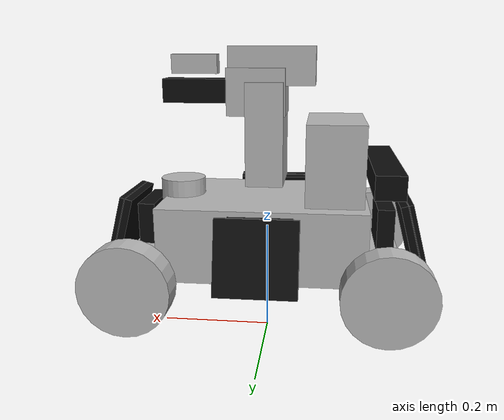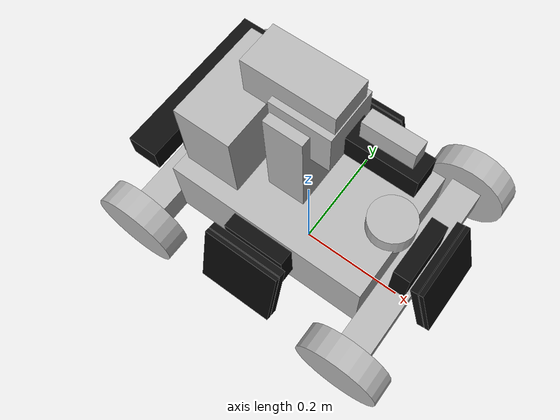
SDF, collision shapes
<?xml version="1.0" ?>
<!-- |    This document was autogenerated by xmacro4sdf from src/rmul24_gazebo_simulator/resource/xmacro/rmul24_sentry_robot.sdf.xmacro  | -->
<!-- |    EDITING THIS FILE BY HAND IS NOT RECOMMENDED                                                                                   | -->
<sdf version="1.7">
	<!--include defination-->
	<!--property defination-->
	<!--rmul24_sentry_robot model-->
	<model name="rmul24_sentry_robot">
		<pose>0 0 0.15 0 0 0</pose>
		<link name="base_footprint"/>
		<joint name="base_to_chassis" type="fixed">
			<pose>0 0 0.076 0 0 0</pose>
			<parent>base_footprint</parent>
			<child>chassis</child>
		</joint>
		<!--chassis-->
		<link name="chassis">
			<inertial>
				<pose>0 0 0.055 0 0 0</pose>
				<mass>15.0</mass>
				<inertia>
					<ixx>0.093125</ixx>
					<ixy>0</ixy>
					<ixz>0</ixz>
					<iyy>0.18312499999999998</iyy>
					<iyz>0</iyz>
					<izz>0.23399999999999999</izz>
				</inertia>
			</inertial>
			<visual name="chassis_visual">
				<geometry>
					<mesh>
						<uri>model://rmua19_standard_robot/meshes/chassis_base.dae</uri>
					</mesh>
				</geometry>
			</visual>
			<collision name="chassis_base_collision">
				<pose>0 0 0.045 0 0 0</pose>
				<geometry>
					<box>
						<size>0.36 0.24 0.13</size>
					</box>
				</geometry>
			</collision>
			<collision name="chassis_projectile_container_collision">
				<pose>-0.122 0 0.177 0 0 0</pose>
				<geometry>
					<box>
						<size>0.1 0.18 0.146</size>
					</box>
				</geometry>
			</collision>
			<collision name="chassis_fornt_wheel_holder_collision">
				<pose>0.208 0 0 0 0 0</pose>
				<geometry>
					<box>
						<size>0.055 0.367 0.055</size>
					</box>
				</geometry>
			</collision>
			<collision name="chassis_rear_wheel_holder_collision">
				<pose>-0.208 0 0 0 0 0</pose>
				<geometry>
					<box>
						<size>0.055 0.367 0.055</size>
					</box>
				</geometry>
			</collision>
			<sensor name="chassis_imu" type="imu">
				<always_on>1</always_on>
				<update_rate>200</update_rate>
			</sensor>
		</link>
		<!--front_left wheel link and joint-->
		<joint name="front_left_wheel_joint" type="revolute">
			<pose relative_to="chassis">0.207 0.194 0 0 0 0</pose>
			<parent>chassis</parent>
			<child>front_left_wheel</child>
			<axis>
				<xyz>0 1 0</xyz>
				<limit>
					<lower>-1.79769e+308</lower>
					<upper>1.79769e+308</upper>
					<effort>1e+10</effort>
					<velocity>1e+10</velocity>
				</limit>
			</axis>
		</joint>
		<link name="front_left_wheel">
			<pose relative_to="front_left_wheel_joint">0 0 0 0 0 0</pose>
			<inertial>
				<pose>0 0 0 1.5707 0 0</pose>
				<mass>0.4</mass>
				<inertia>
					<ixx>0.0006426653333333334</ixx>
					<ixy>0</ixy>
					<ixz>0</ixz>
					<iyy>0.0006426653333333334</iyy>
					<iyz>0</iyz>
					<izz>0.0011491280000000001</izz>
				</inertia>
			</inertial>
			<visual name="front_left_wheel_visual">
				<geometry>
					<mesh>
						<uri>model://rmua19_standard_robot/meshes/wheel_left.dae</uri>
					</mesh>
				</geometry>
			</visual>
			<collision name="front_left_wheel_collision">
				<pose>0 0 0 1.5707 0 0</pose>
				<geometry>
					<cylinder>
						<radius>0.0758</radius>
						<length>0.0452</length>
					</cylinder>
				</geometry>
				<surface>
					<friction>
						<ode>
							<mu>0.2</mu>
							<mu2>0.2</mu2>
						</ode>
					</friction>
				</surface>
			</collision>
		</link>
		<!--front_right wheel link and joint-->
		<joint name="front_right_wheel_joint" type="revolute">
			<pose relative_to="chassis">0.207 -0.194 0 0 0 0</pose>
			<parent>chassis</parent>
			<child>front_right_wheel</child>
			<axis>
				<xyz>0 1 0</xyz>
				<limit>
					<lower>-1.79769e+308</lower>
					<upper>1.79769e+308</upper>
					<effort>1e+10</effort>
					<velocity>1e+10</velocity>
				</limit>
			</axis>
		</joint>
		<link name="front_right_wheel">
			<pose relative_to="front_right_wheel_joint">0 0 0 0 0 0</pose>
			<inertial>
				<pose>0 0 0 1.5707 0 0</pose>
				<mass>0.4</mass>
				<inertia>
					<ixx>0.0006426653333333334</ixx>
					<ixy>0</ixy>
					<ixz>0</ixz>
					<iyy>0.0006426653333333334</iyy>
					<iyz>0</iyz>
					<izz>0.0011491280000000001</izz>
				</inertia>
			</inertial>
			<visual name="front_right_wheel_visual">
				<geometry>
					<mesh>
						<uri>model://rmua19_standard_robot/meshes/wheel_right.dae</uri>
					</mesh>
				</geometry>
			</visual>
			<collision name="front_right_wheel_collision">
				<pose>0 0 0 1.5707 0 0</pose>
				<geometry>
					<cylinder>
						<radius>0.0758</radius>
						<length>0.0452</length>
					</cylinder>
				</geometry>
				<surface>
					<friction>
						<ode>
							<mu>0.2</mu>
							<mu2>0.2</mu2>
						</ode>
					</friction>
				</surface>
			</collision>
		</link>
		<!--rear_left wheel link and joint-->
		<joint name="rear_left_wheel_joint" type="revolute">
			<pose relative_to="chassis">-0.207 0.194 0 0 0 0</pose>
			<parent>chassis</parent>
			<child>rear_left_wheel</child>
			<axis>
				<xyz>0 1 0</xyz>
				<limit>
					<lower>-1.79769e+308</lower>
					<upper>1.79769e+308</upper>
					<effort>1e+10</effort>
					<velocity>1e+10</velocity>
				</limit>
			</axis>
		</joint>
		<link name="rear_left_wheel">
			<pose relative_to="rear_left_wheel_joint">0 0 0 0 0 0</pose>
			<inertial>
				<pose>0 0 0 1.5707 0 0</pose>
				<mass>0.4</mass>
				<inertia>
					<ixx>0.0006426653333333334</ixx>
					<ixy>0</ixy>
					<ixz>0</ixz>
					<iyy>0.0006426653333333334</iyy>
					<iyz>0</iyz>
					<izz>0.0011491280000000001</izz>
				</inertia>
			</inertial>
			<visual name="rear_left_wheel_visual">
				<geometry>
					<mesh>
						<uri>model://rmua19_standard_robot/meshes/wheel_right.dae</uri>
					</mesh>
				</geometry>
			</visual>
			<collision name="rear_left_wheel_collision">
				<pose>0 0 0 1.5707 0 0</pose>
				<geometry>
					<cylinder>
						<radius>0.0758</radius>
						<length>0.0452</length>
					</cylinder>
				</geometry>
				<surface>
					<friction>
						<ode>
							<mu>0.2</mu>
							<mu2>0.2</mu2>
						</ode>
					</friction>
				</surface>
			</collision>
		</link>
		<!--rear_right wheel link and joint-->
		<joint name="rear_right_wheel_joint" type="revolute">
			<pose relative_to="chassis">-0.207 -0.194 0 0 0 0</pose>
			<parent>chassis</parent>
			<child>rear_right_wheel</child>
			<axis>
				<xyz>0 1 0</xyz>
				<limit>
					<lower>-1.79769e+308</lower>
					<upper>1.79769e+308</upper>
					<effort>1e+10</effort>
					<velocity>1e+10</velocity>
				</limit>
			</axis>
		</joint>
		<link name="rear_right_wheel">
			<pose relative_to="rear_right_wheel_joint">0 0 0 0 0 0</pose>
			<inertial>
				<pose>0 0 0 1.5707 0 0</pose>
				<mass>0.4</mass>
				<inertia>
					<ixx>0.0006426653333333334</ixx>
					<ixy>0</ixy>
					<ixz>0</ixz>
					<iyy>0.0006426653333333334</iyy>
					<iyz>0</iyz>
					<izz>0.0011491280000000001</izz>
				</inertia>
			</inertial>
			<visual name="rear_right_wheel_visual">
				<geometry>
					<mesh>
						<uri>model://rmua19_standard_robot/meshes/wheel_left.dae</uri>
					</mesh>
				</geometry>
			</visual>
			<collision name="rear_right_wheel_collision">
				<pose>0 0 0 1.5707 0 0</pose>
				<geometry>
					<cylinder>
						<radius>0.0758</radius>
						<length>0.0452</length>
					</cylinder>
				</geometry>
				<surface>
					<friction>
						<ode>
							<mu>0.2</mu>
							<mu2>0.2</mu2>
						</ode>
					</friction>
				</surface>
			</collision>
		</link>
		<!--gimbal yaw module-->
		<joint name="gimbal_yaw_joint" type="revolute">
			<pose relative_to="chassis">0 0 0.1376 0 0 0</pose>
			<parent>chassis</parent>
			<child>gimbal_yaw</child>
			<axis>
				<xyz>0 0 1</xyz>
				<limit>
					<effort>100</effort>
					<velocity>50</velocity>
					<lower>-1.79769e+308</lower>
					<upper>1.79769e+308</upper>
				</limit>
			</axis>
		</joint>
		<link name="gimbal_yaw">
			<pose relative_to="gimbal_yaw_joint">0 0 0 0 0 0</pose>
			<inertial>
				<pose>0 0 0.06 0 0 0</pose>
				<mass>1.0</mass>
				<inertia>
					<ixx>0.003033333333333334</ixx>
					<ixy>0</ixy>
					<ixz>0</ixz>
					<iyy>0.003033333333333334</iyy>
					<iyz>0</iyz>
					<izz>0.0012500000000000002</izz>
				</inertia>
			</inertial>
			<visual name="visual">
				<geometry>
					<mesh>
						<uri>model://rmua19_standard_robot/meshes/gimbal_yaw.dae</uri>
					</mesh>
				</geometry>
			</visual>
			<collision name="collision">
				<pose>0 0 0.0885 0 0 0</pose>
				<geometry>
					<box>
						<size>0.065 0.117 0.177</size>
					</box>
				</geometry>
			</collision>
		</link>
		<!--gimbal pitch module-->
		<joint name="gimbal_pitch_joint" type="revolute">
			<pose relative_to="gimbal_yaw">0 0.004 0.16 0 0 0</pose>
			<parent>gimbal_yaw</parent>
			<child>gimbal_pitch</child>
			<axis>
				<xyz>0 1 0</xyz>
				<limit>
					<effort>100</effort>
					<lower>-0.785</lower>
					<upper>0.5652</upper>
					<velocity>50</velocity>
				</limit>
			</axis>
		</joint>
		<link name="gimbal_pitch">
			<pose relative_to="gimbal_pitch_joint">0 0 0 0 0 0</pose>
			<inertial>
				<pose>0.02 0 0 0 0 0</pose>
				<mass>0.5</mass>
				<inertia>
					<ixx>0.0007541666666666668</ixx>
					<ixy>0</ixy>
					<ixz>0</ixz>
					<iyy>0.0030208333333333337</iyy>
					<iyz>0</iyz>
					<izz>0.0029416666666666666</izz>
				</inertia>
			</inertial>
			<visual name="visual">
				<geometry>
					<mesh>
						<uri>model://rmua19_standard_robot/meshes/gimbal_pitch.dae</uri>
					</mesh>
				</geometry>
			</visual>
			<collision name="collision_main">
				<pose>0.015 0 0 0 0 0</pose>
				<geometry>
					<box>
						<size>0.1 0.0915 0.08</size>
					</box>
				</geometry>
			</collision>
			<collision name="collision_box">
				<pose>-0.011 0 0.043 0 0 0</pose>
				<geometry>
					<box>
						<size>0.14801 0.07 0.065</size>
					</box>
				</geometry>
			</collision>
			<sensor name="gimbal_imu" type="imu">
				<always_on>1</always_on>
				<update_rate>200</update_rate>
			</sensor>
		</link>
		<!--for referee system -->
		<!--front armors -->
		<joint name="armor_support_frame_0_joint" type="fixed">
			<pose relative_to="chassis">0.197 0 0.061 0 0 0</pose>
			<parent>chassis</parent>
			<child>armor_support_frame_0</child>
		</joint>
		<link name="armor_support_frame_0">
			<pose relative_to="armor_support_frame_0_joint">0 0 0 0 0 0</pose>
			<inertial>
				<pose>0.035 0 0 0 0 0</pose>
				<mass>0.1</mass>
				<inertia>
					<ixx>0.00023080833333333334</ixx>
					<ixy>0</ixy>
					<ixz>0</ixz>
					<iyy>0.00017014166666666668</iyy>
					<iyz>0</iyz>
					<izz>0.00014468333333333334</izz>
				</inertia>
			</inertial>
			<visual name="visual">
				<geometry>
					<mesh>
						<uri>model://rm21_armor_module/meshes/armor_support_frame.stl</uri>
					</mesh>
				</geometry>
				<material>
					<ambient>0.1 0.1 0.1</ambient>
					<diffuse>0.05 0.05 0.05</diffuse>
					<specular>0.6 0.6 0.6</specular>
				</material>
			</visual>
			<collision name="collision">
				<pose>0.015 0 0 0 0 0</pose>
				<geometry>
					<box>
						<size>0.03 0.11 0.08</size>
					</box>
				</geometry>
			</collision>
		</link>
		<joint name="armor_0_joint" type="fixed">
			<pose relative_to="armor_support_frame_0">0.075 0 -0.071 0 -0.262 0</pose>
			<parent>armor_support_frame_0</parent>
			<child>armor_0</child>
		</joint>
		<link name="armor_0">
			<pose relative_to="armor_0_joint">0 0 0 0 0 0</pose>
			<inertial>
				<pose>0 0 0.0625 0 0 0</pose>
				<mass>0.1</mass>
				<inertia>
					<ixx>0.0003065083333333333</ixx>
					<ixy>0</ixy>
					<ixz>0</ixz>
					<iyy>0.0001421774166666667</iyy>
					<iyz>0</iyz>
					<izz>0.0001670190833333333</izz>
				</inertia>
			</inertial>
			<visual name="visual">
				<geometry>
					<mesh>
						<uri>model://rm21_armor_module/meshes/small_armor.dae</uri>
					</mesh>
				</geometry>
				<material>
					<ambient>0.1 0.1 0.1</ambient>
					<diffuse>0.05 0.05 0.05</diffuse>
					<specular>0.6 0.6 0.6</specular>
				</material>
			</visual>
			<visual name="target_visual">
				<geometry>
					<mesh>
						<uri>model://rm21_armor_module/meshes/small_armor_target.dae</uri>
					</mesh>
				</geometry>
				<material>
					<ambient>0.1 0.1 0.1</ambient>
					<diffuse>0.05 0.05 0.05</diffuse>
					<specular>0.6 0.6 0.6</specular>
				</material>
			</visual>
			<visual name="light_bar_visual">
				<geometry>
					<mesh>
						<uri>model://rm21_armor_module/meshes/small_armor_light_bar.dae</uri>
					</mesh>
				</geometry>
				<material>
					<ambient>1.0 1.0 1.0</ambient>
					<diffuse>1.0 1.0 1.0</diffuse>
					<emissive>1.0 1.0 1.0</emissive>
					<specular>0.5 0.5 0.5</specular>
				</material>
			</visual>
			<visual name="sticker_visual">
				<pose>0.014 0 0.0625 1.5708 0 1.5708</pose>
				<geometry>
					<plane>
						<normal>0 0 1</normal>
						<size>0.130 0.120</size>
					</plane>
				</geometry>
				<material>
					<ambient>1.0 1.0 1.0</ambient>
					<diffuse>1.0 1.0 1.0</diffuse>
					<specular>0.1 0.1 0.1</specular>
					<pbr>
						<metal>
							<albedo_map>model://rm21_armor_module/materials/textures/small_num3.png</albedo_map>
						</metal>
					</pbr>
				</material>
			</visual>
			<collision name="collision">
				<pose>0 0 0.0625 0 0 0</pose>
				<geometry>
					<box>
						<size>0.013 0.135 0.125</size>
					</box>
				</geometry>
			</collision>
			<collision name="target_collision">
				<pose>0.012 0 0.0625 0 0 0</pose>
				<geometry>
					<box>
						<size>0.008 0.135 0.125</size>
					</box>
				</geometry>
			</collision>
		</link>
		<!--left armors -->
		<joint name="armor_support_frame_1_joint" type="fixed">
			<pose relative_to="chassis">0 0.116 0.061 0 0 1.5708</pose>
			<parent>chassis</parent>
			<child>armor_support_frame_1</child>
		</joint>
		<link name="armor_support_frame_1">
			<pose relative_to="armor_support_frame_1_joint">0 0 0 0 0 0</pose>
			<inertial>
				<pose>0.035 0 0 0 0 0</pose>
				<mass>0.1</mass>
				<inertia>
					<ixx>0.00023080833333333334</ixx>
					<ixy>0</ixy>
					<ixz>0</ixz>
					<iyy>0.00017014166666666668</iyy>
					<iyz>0</iyz>
					<izz>0.00014468333333333334</izz>
				</inertia>
			</inertial>
			<visual name="visual">
				<geometry>
					<mesh>
						<uri>model://rm21_armor_module/meshes/armor_support_frame.stl</uri>
					</mesh>
				</geometry>
				<material>
					<ambient>0.1 0.1 0.1</ambient>
					<diffuse>0.05 0.05 0.05</diffuse>
					<specular>0.6 0.6 0.6</specular>
				</material>
			</visual>
			<collision name="collision">
				<pose>0.015 0 0 0 0 0</pose>
				<geometry>
					<box>
						<size>0.03 0.11 0.08</size>
					</box>
				</geometry>
			</collision>
		</link>
		<joint name="armor_1_joint" type="fixed">
			<pose relative_to="armor_support_frame_1">0.075 0 -0.071 0 -0.262 0</pose>
			<parent>armor_support_frame_1</parent>
			<child>armor_1</child>
		</joint>
		<link name="armor_1">
			<pose relative_to="armor_1_joint">0 0 0 0 0 0</pose>
			<inertial>
				<pose>0 0 0.0625 0 0 0</pose>
				<mass>0.1</mass>
				<inertia>
					<ixx>0.0003065083333333333</ixx>
					<ixy>0</ixy>
					<ixz>0</ixz>
					<iyy>0.0001421774166666667</iyy>
					<iyz>0</iyz>
					<izz>0.0001670190833333333</izz>
				</inertia>
			</inertial>
			<visual name="visual">
				<geometry>
					<mesh>
						<uri>model://rm21_armor_module/meshes/small_armor.dae</uri>
					</mesh>
				</geometry>
				<material>
					<ambient>0.1 0.1 0.1</ambient>
					<diffuse>0.05 0.05 0.05</diffuse>
					<specular>0.6 0.6 0.6</specular>
				</material>
			</visual>
			<visual name="target_visual">
				<geometry>
					<mesh>
						<uri>model://rm21_armor_module/meshes/small_armor_target.dae</uri>
					</mesh>
				</geometry>
				<material>
					<ambient>0.1 0.1 0.1</ambient>
					<diffuse>0.05 0.05 0.05</diffuse>
					<specular>0.6 0.6 0.6</specular>
				</material>
			</visual>
			<visual name="light_bar_visual">
				<geometry>
					<mesh>
						<uri>model://rm21_armor_module/meshes/small_armor_light_bar.dae</uri>
					</mesh>
				</geometry>
				<material>
					<ambient>1.0 1.0 1.0</ambient>
					<diffuse>1.0 1.0 1.0</diffuse>
					<emissive>1.0 1.0 1.0</emissive>
					<specular>0.5 0.5 0.5</specular>
				</material>
			</visual>
			<visual name="sticker_visual">
				<pose>0.014 0 0.0625 1.5708 0 1.5708</pose>
				<geometry>
					<plane>
						<normal>0 0 1</normal>
						<size>0.130 0.120</size>
					</plane>
				</geometry>
				<material>
					<ambient>1.0 1.0 1.0</ambient>
					<diffuse>1.0 1.0 1.0</diffuse>
					<specular>0.1 0.1 0.1</specular>
					<pbr>
						<metal>
							<albedo_map>model://rm21_armor_module/materials/textures/small_num3.png</albedo_map>
						</metal>
					</pbr>
				</material>
			</visual>
			<collision name="collision">
				<pose>0 0 0.0625 0 0 0</pose>
				<geometry>
					<box>
						<size>0.013 0.135 0.125</size>
					</box>
				</geometry>
			</collision>
			<collision name="target_collision">
				<pose>0.012 0 0.0625 0 0 0</pose>
				<geometry>
					<box>
						<size>0.008 0.135 0.125</size>
					</box>
				</geometry>
			</collision>
		</link>
		<!--rear armors -->
		<joint name="armor_support_frame_2_joint" type="fixed">
			<pose relative_to="chassis">-0.197 0 0.061 0 0 3.14</pose>
			<parent>chassis</parent>
			<child>armor_support_frame_2</child>
		</joint>
		<link name="armor_support_frame_2">
			<pose relative_to="armor_support_frame_2_joint">0 0 0 0 0 0</pose>
			<inertial>
				<pose>0.035 0 0 0 0 0</pose>
				<mass>0.1</mass>
				<inertia>
					<ixx>0.00023080833333333334</ixx>
					<ixy>0</ixy>
					<ixz>0</ixz>
					<iyy>0.00017014166666666668</iyy>
					<iyz>0</iyz>
					<izz>0.00014468333333333334</izz>
				</inertia>
			</inertial>
			<visual name="visual">
				<geometry>
					<mesh>
						<uri>model://rm21_armor_module/meshes/armor_support_frame.stl</uri>
					</mesh>
				</geometry>
				<material>
					<ambient>0.1 0.1 0.1</ambient>
					<diffuse>0.05 0.05 0.05</diffuse>
					<specular>0.6 0.6 0.6</specular>
				</material>
			</visual>
			<collision name="collision">
				<pose>0.015 0 0 0 0 0</pose>
				<geometry>
					<box>
						<size>0.03 0.11 0.08</size>
					</box>
				</geometry>
			</collision>
		</link>
		<joint name="armor_2_joint" type="fixed">
			<pose relative_to="armor_support_frame_2">0.075 0 -0.071 0 -0.262 0</pose>
			<parent>armor_support_frame_2</parent>
			<child>armor_2</child>
		</joint>
		<link name="armor_2">
			<pose relative_to="armor_2_joint">0 0 0 0 0 0</pose>
			<inertial>
				<pose>0 0 0.0625 0 0 0</pose>
				<mass>0.1</mass>
				<inertia>
					<ixx>0.0003065083333333333</ixx>
					<ixy>0</ixy>
					<ixz>0</ixz>
					<iyy>0.0001421774166666667</iyy>
					<iyz>0</iyz>
					<izz>0.0001670190833333333</izz>
				</inertia>
			</inertial>
			<visual name="visual">
				<geometry>
					<mesh>
						<uri>model://rm21_armor_module/meshes/small_armor.dae</uri>
					</mesh>
				</geometry>
				<material>
					<ambient>0.1 0.1 0.1</ambient>
					<diffuse>0.05 0.05 0.05</diffuse>
					<specular>0.6 0.6 0.6</specular>
				</material>
			</visual>
			<visual name="target_visual">
				<geometry>
					<mesh>
						<uri>model://rm21_armor_module/meshes/small_armor_target.dae</uri>
					</mesh>
				</geometry>
				<material>
					<ambient>0.1 0.1 0.1</ambient>
					<diffuse>0.05 0.05 0.05</diffuse>
					<specular>0.6 0.6 0.6</specular>
				</material>
			</visual>
			<visual name="light_bar_visual">
				<geometry>
					<mesh>
						<uri>model://rm21_armor_module/meshes/small_armor_light_bar.dae</uri>
					</mesh>
				</geometry>
				<material>
					<ambient>1.0 1.0 1.0</ambient>
					<diffuse>1.0 1.0 1.0</diffuse>
					<emissive>1.0 1.0 1.0</emissive>
					<specular>0.5 0.5 0.5</specular>
				</material>
			</visual>
			<visual name="sticker_visual">
				<pose>0.014 0 0.0625 1.5708 0 1.5708</pose>
				<geometry>
					<plane>
						<normal>0 0 1</normal>
						<size>0.130 0.120</size>
					</plane>
				</geometry>
				<material>
					<ambient>1.0 1.0 1.0</ambient>
					<diffuse>1.0 1.0 1.0</diffuse>
					<specular>0.1 0.1 0.1</specular>
					<pbr>
						<metal>
							<albedo_map>model://rm21_armor_module/materials/textures/small_num3.png</albedo_map>
						</metal>
					</pbr>
				</material>
			</visual>
			<collision name="collision">
				<pose>0 0 0.0625 0 0 0</pose>
				<geometry>
					<box>
						<size>0.013 0.135 0.125</size>
					</box>
				</geometry>
			</collision>
			<collision name="target_collision">
				<pose>0.012 0 0.0625 0 0 0</pose>
				<geometry>
					<box>
						<size>0.008 0.135 0.125</size>
					</box>
				</geometry>
			</collision>
		</link>
		<!--right armors -->
		<joint name="armor_support_frame_3_joint" type="fixed">
			<pose relative_to="chassis">0 -0.116 0.061 0 0 -1.5708</pose>
			<parent>chassis</parent>
			<child>armor_support_frame_3</child>
		</joint>
		<link name="armor_support_frame_3">
			<pose relative_to="armor_support_frame_3_joint">0 0 0 0 0 0</pose>
			<inertial>
				<pose>0.035 0 0 0 0 0</pose>
				<mass>0.1</mass>
				<inertia>
					<ixx>0.00023080833333333334</ixx>
					<ixy>0</ixy>
					<ixz>0</ixz>
					<iyy>0.00017014166666666668</iyy>
					<iyz>0</iyz>
					<izz>0.00014468333333333334</izz>
				</inertia>
			</inertial>
			<visual name="visual">
				<geometry>
					<mesh>
						<uri>model://rm21_armor_module/meshes/armor_support_frame.stl</uri>
					</mesh>
				</geometry>
				<material>
					<ambient>0.1 0.1 0.1</ambient>
					<diffuse>0.05 0.05 0.05</diffuse>
					<specular>0.6 0.6 0.6</specular>
				</material>
			</visual>
			<collision name="collision">
				<pose>0.015 0 0 0 0 0</pose>
				<geometry>
					<box>
						<size>0.03 0.11 0.08</size>
					</box>
				</geometry>
			</collision>
		</link>
		<joint name="armor_3_joint" type="fixed">
			<pose relative_to="armor_support_frame_3">0.075 0 -0.071 0 -0.262 0</pose>
			<parent>armor_support_frame_3</parent>
			<child>armor_3</child>
		</joint>
		<link name="armor_3">
			<pose relative_to="armor_3_joint">0 0 0 0 0 0</pose>
			<inertial>
				<pose>0 0 0.0625 0 0 0</pose>
				<mass>0.1</mass>
				<inertia>
					<ixx>0.0003065083333333333</ixx>
					<ixy>0</ixy>
					<ixz>0</ixz>
					<iyy>0.0001421774166666667</iyy>
					<iyz>0</iyz>
					<izz>0.0001670190833333333</izz>
				</inertia>
			</inertial>
			<visual name="visual">
				<geometry>
					<mesh>
						<uri>model://rm21_armor_module/meshes/small_armor.dae</uri>
					</mesh>
				</geometry>
				<material>
					<ambient>0.1 0.1 0.1</ambient>
					<diffuse>0.05 0.05 0.05</diffuse>
					<specular>0.6 0.6 0.6</specular>
				</material>
			</visual>
			<visual name="target_visual">
				<geometry>
					<mesh>
						<uri>model://rm21_armor_module/meshes/small_armor_target.dae</uri>
					</mesh>
				</geometry>
				<material>
					<ambient>0.1 0.1 0.1</ambient>
					<diffuse>0.05 0.05 0.05</diffuse>
					<specular>0.6 0.6 0.6</specular>
				</material>
			</visual>
			<visual name="light_bar_visual">
				<geometry>
					<mesh>
						<uri>model://rm21_armor_module/meshes/small_armor_light_bar.dae</uri>
					</mesh>
				</geometry>
				<material>
					<ambient>1.0 1.0 1.0</ambient>
					<diffuse>1.0 1.0 1.0</diffuse>
					<emissive>1.0 1.0 1.0</emissive>
					<specular>0.5 0.5 0.5</specular>
				</material>
			</visual>
			<visual name="sticker_visual">
				<pose>0.014 0 0.0625 1.5708 0 1.5708</pose>
				<geometry>
					<plane>
						<normal>0 0 1</normal>
						<size>0.130 0.120</size>
					</plane>
				</geometry>
				<material>
					<ambient>1.0 1.0 1.0</ambient>
					<diffuse>1.0 1.0 1.0</diffuse>
					<specular>0.1 0.1 0.1</specular>
					<pbr>
						<metal>
							<albedo_map>model://rm21_armor_module/materials/textures/small_num3.png</albedo_map>
						</metal>
					</pbr>
				</material>
			</visual>
			<collision name="collision">
				<pose>0 0 0.0625 0 0 0</pose>
				<geometry>
					<box>
						<size>0.013 0.135 0.125</size>
					</box>
				</geometry>
			</collision>
			<collision name="target_collision">
				<pose>0.012 0 0.0625 0 0 0</pose>
				<geometry>
					<box>
						<size>0.008 0.135 0.125</size>
					</box>
				</geometry>
			</collision>
		</link>
		<!--light_indicator-->
		<joint name="light_indicator_joint" type="fixed">
			<pose relative_to="chassis">-0.207 0 0.1 0 0 0</pose>
			<parent>chassis</parent>
			<child>light_indicator</child>
		</joint>
		<link name="light_indicator">
			<pose relative_to="light_indicator_joint">0 0 0 0 0 0</pose>
			<inertial>
				<pose>0 0 0.04 0 0 0</pose>
				<mass>0.1</mass>
				<inertia>
					<ixx>0.0006666666666666669</ixx>
					<ixy>0</ixy>
					<ixz>0</ixz>
					<iyy>3.416666666666667e-05</iyy>
					<iyz>0</iyz>
					<izz>0.0006741666666666668</izz>
				</inertia>
			</inertial>
			<visual name="light_indicator_holder_visual">
				<geometry>
					<mesh>
						<uri>model://rm21_light_indicator_module/meshes/light_indicator_holder.dae</uri>
					</mesh>
				</geometry>
				<material>
					<ambient>0.1 0.1 0.1</ambient>
					<diffuse>0.05 0.05 0.05</diffuse>
					<specular>0.6 0.6 0.6</specular>
				</material>
			</visual>
			<visual name="light_bar_visual">
				<geometry>
					<mesh>
						<uri>model://rm21_light_indicator_module/meshes/light_indicator_bar.dae</uri>
					</mesh>
				</geometry>
				<material>
					<ambient>1.0 1.0 1.0</ambient>
					<diffuse>1.0 1.0 1.0</diffuse>
					<specular>0.5 0.5 0.5</specular>
				</material>
			</visual>
			<collision name="light_bar_collision">
				<pose>0 0 0.06 0 0 0</pose>
				<geometry>
					<box>
						<size>0.05 0.28 0.04</size>
					</box>
				</geometry>
			</collision>
		</link>
		<!--speed_monitor_17mm-->
		<joint name="speed_monitor_joint" type="fixed">
			<pose relative_to="gimbal_pitch">0.07 0 0 0 0 0</pose>
			<parent>gimbal_pitch</parent>
			<child>speed_monitor</child>
		</joint>
		<link name="speed_monitor">
			<pose relative_to="speed_monitor_joint">0 0 0 0 0 0</pose>
			<inertial>
				<pose>0.055 0 0 0 0 0</pose>
				<mass>0.1</mass>
				<inertia>
					<ixx>2.941666666666667e-05</ixx>
					<ixy>0</ixy>
					<ixz>0</ixz>
					<iyy>0.00011484166666666668</iyy>
					<iyz>0</iyz>
					<izz>0.00011624166666666668</izz>
				</inertia>
			</inertial>
			<visual name="visual">
				<geometry>
					<mesh>
						<uri>model://rm21_speed_monitor_module/meshes/speed_monitor_17mm.dae</uri>
					</mesh>
				</geometry>
				<material>
					<ambient>0.1 0.1 0.1</ambient>
					<diffuse>0.05 0.05 0.05</diffuse>
					<specular>0.6 0.6 0.6</specular>
				</material>
			</visual>
			<visual name="light_bar_visual">
				<geometry>
					<mesh>
						<uri>model://rm21_speed_monitor_module/meshes/speed_monitor_17mm_light_bar.dae</uri>
					</mesh>
				</geometry>
				<material>
					<ambient>1.0 1.0 1.0</ambient>
					<diffuse>1.0 1.0 1.0</diffuse>
					<specular>0.5 0.5 0.5</specular>
				</material>
			</visual>
			<collision name="collision">
				<pose>0.055 0 0 0 0 0</pose>
				<geometry>
					<box>
						<size>0.11 0.043 0.041</size>
					</box>
				</geometry>
			</collision>
		</link>
		<!--rplidar a2-->
		<joint name="front_rplidar_a2_joint" type="fixed">
			<pose relative_to="chassis">0.155 0 0.1 0 0 0</pose>
			<parent>chassis</parent>
			<child>front_rplidar_a2</child>
		</joint>
		<link name="front_rplidar_a2">
			<pose relative_to="front_rplidar_a2_joint">0 0 0 0 0 0</pose>
			<inertial>
				<pose>0 0 0.02 0 0 0</pose>
				<mass>0.005</mass>
				<inertia>
					<ixx>2.6666666666666664e-06</ixx>
					<ixy>0</ixy>
					<ixz>0</ixz>
					<iyy>2.6666666666666664e-06</iyy>
					<iyz>0</iyz>
					<izz>4.000000000000001e-06</izz>
				</inertia>
			</inertial>
			<visual name="visual">
				<geometry>
					<mesh>
						<uri>model://rplidar_a2/meshes/rplidar_a2.dae</uri>
					</mesh>
				</geometry>
			</visual>
			<collision name="collision">
				<pose>0 0 0.02 0 0 0</pose>
				<geometry>
					<cylinder>
						<radius>0.04</radius>
						<length>0.04</length>
					</cylinder>
				</geometry>
			</collision>
			<sensor name="front_rplidar_a2" type="gpu_lidar">
				<ignition_frame_id>front_rplidar_a2</ignition_frame_id>
				<pose>0 0 0.03 0 0 0</pose>
				<always_on>true</always_on>
				<visualize>true</visualize>
				<update_rate>10.0</update_rate>
				<ray>
					<scan>
						<horizontal>
							<samples>400.0</samples>
							<resolution>1.0</resolution>
							<min_angle>0</min_angle>
							<max_angle>6.28000020980835</max_angle>
						</horizontal>
					</scan>
					<range>
						<min>0.15</min>
						<max>12.0</max>
					</range>
				</ray>
				<noise>
					<type>gaussian</type>
					<mean>0.0</mean>
					<stddev>0.01</stddev>
				</noise>
			</sensor>
		</link>
		<!--livox-->
		<joint name="front_livox_joint" type="fixed">
			<pose relative_to="chassis">0.16 0.0 0.18 0.5235987755982988 0.0 1.5707963267948966</pose>
			<parent>chassis</parent>
			<child>front_mid360</child>
		</joint>
		<link name="front_mid360">
			<pose relative_to="front_livox_joint">0.0 0.0 0.0 0 0 0</pose>
			<inertial>
				<pose>0 0 0.02 0 0 0</pose>
				<mass>0.005</mass>
				<inertia>
					<ixx>2.6666666666666664e-06</ixx>
					<ixy>0</ixy>
					<ixz>0</ixz>
					<iyy>2.6666666666666664e-06</iyy>
					<iyz>0</iyz>
					<izz>4.000000000000001e-06</izz>
				</inertia>
			</inertial>
			<visual name="visual">
				<pose>0.0 0.0 0.0 0 0 3.141592653589793</pose>
				<geometry>
					<mesh>
						<uri>model://mid360/meshes/mid360.dae</uri>
					</mesh>
				</geometry>
			</visual>
			<sensor name="front_mid360_imu" type="imu">
				<always_on>1</always_on>
				<update_rate>200</update_rate>
				<visualize>true</visualize>
			</sensor>
			<sensor name="front_mid360_lidar" type="gpu_lidar">
				<ignition_frame_id>front_mid360</ignition_frame_id>
				<pose>0 0 0.03 0 0 0</pose>
				<always_on>true</always_on>
				<visualize>true</visualize>
				<update_rate>20.0</update_rate>
				<ray>
					<scan>
						<horizontal>
							<samples>1875.0</samples>
							<resolution>1.0</resolution>
							<min_angle>0</min_angle>
							<max_angle>6.2831852</max_angle>
						</horizontal>
						<vertical>
							<samples>32</samples>
							<min_angle>-0.12217304764</min_angle>
							<max_angle>0.90757121104</max_angle>
						</vertical>
					</scan>
					<range>
						<min>0.15</min>
						<max>15.0</max>
					</range>
				</ray>
				<noise>
					<type>gaussian</type>
					<mean>0.0</mean>
					<stddev>0.01</stddev>
				</noise>
			</sensor>
		</link>
		<!--industrial camera-->
		<joint name="front_industrial_camera_joint" type="fixed">
			<pose relative_to="gimbal_pitch">0.1 0 0.045 0 0 0</pose>
			<parent>gimbal_pitch</parent>
			<child>front_industrial_camera</child>
		</joint>
		<link name="front_industrial_camera">
			<pose relative_to="front_industrial_camera_joint">0 0 0 0 0 0</pose>
			<inertial>
				<pose>0.025 0 0 0 0 0</pose>
				<mass>0.05</mass>
				<inertia>
					<ixx>7.141666666666669e-06</ixx>
					<ixy>0</ixy>
					<ixz>0</ixz>
					<iyy>3.1204166666666675e-05</iyy>
					<iyz>0</iyz>
					<izz>2.9270833333333334e-05</izz>
				</inertia>
			</inertial>
			<visual name="visual">
				<geometry>
					<mesh>
						<uri>model://industrial_camera/meshes/industrial_camera.dae</uri>
					</mesh>
				</geometry>
			</visual>
			<collision name="collision">
				<pose>0.025 0 0 0 0 0</pose>
				<geometry>
					<box>
						<size>0.08 0.025 0.033</size>
					</box>
				</geometry>
			</collision>
			<sensor name="front_industrial_camera" type="camera">
				<always_on>1</always_on>
				<update_rate>30.0</update_rate>
				<camera>
					<horizontal_fov>1.0</horizontal_fov>
					<image>
						<width>1920.0</width>
						<height>1080.0</height>
					</image>
					<clip>
						<near>0.1</near>
						<far>100</far>
					</clip>
				</camera>
			</sensor>
		</link>
		<!--plugins-->
		<!-- https://github.com/gazebosim/gz-sim/blob/ign-gazebo6/src/systems -->
		<!--plugin for joint state sensor-->
		<plugin filename="ignition-gazebo-joint-state-publisher-system" name="ignition::gazebo::systems::JointStatePublisher">
        </plugin>
		<!--plugin for light bar-->
		<plugin filename="LightBarController" name="ignition::gazebo::systems::LightBarController">
			<controller_name>color</controller_name>
			<link_visual>armor_0/light_bar_visual</link_visual>
			<link_visual>armor_1/light_bar_visual</link_visual>
			<link_visual>armor_2/light_bar_visual</link_visual>
			<link_visual>armor_3/light_bar_visual</link_visual>
			<link_visual>light_indicator/light_bar_visual</link_visual>
			<link_visual>speed_monitor/light_bar_visual</link_visual>
			<initial_color>none</initial_color>
		</plugin>
		<!--plugin for chassis control-->
		<plugin filename="MecanumDrive2" name="ignition::gazebo::systems::MecanumDrive2">
			<chassis_link>chassis</chassis_link>
			<front_left_joint>front_left_wheel_joint</front_left_joint>
			<front_right_joint>front_right_wheel_joint</front_right_joint>
			<rear_left_joint>rear_left_wheel_joint</rear_left_joint>
			<rear_right_joint>rear_right_wheel_joint</rear_right_joint>
		</plugin>
		<!--plugin for gimbal control-->
		<plugin filename="ignition-gazebo-joint-controller-system" name="ignition::gazebo::systems::JointController">
			<joint_name>gimbal_yaw_joint</joint_name>
			<use_force_commands>false</use_force_commands>
			<p_gain>0.2</p_gain>
			<i_gain>0.01</i_gain>
		</plugin>
		<plugin filename="ignition-gazebo-joint-controller-system" name="ignition::gazebo::systems::JointController">
			<joint_name>gimbal_pitch_joint</joint_name>
			<use_force_commands>false</use_force_commands>
			<p_gain>1</p_gain>
			<i_gain>0.01</i_gain>
		</plugin>
		<!--plugin for shooter-->
		<plugin filename="ProjectileShooter" name="ignition::gazebo::systems::ProjectileShooter">
			<shooter_link>speed_monitor</shooter_link>
			<shooter_offset>0.15 0 0 0 0 0</shooter_offset>
			<shooter_name>small_shooter</shooter_name>
			<projectile_velocity>20</projectile_velocity>
			<projectile_uri>model://rm_projectile_17mm</projectile_uri>
		</plugin>
	</model>
</sdf>
